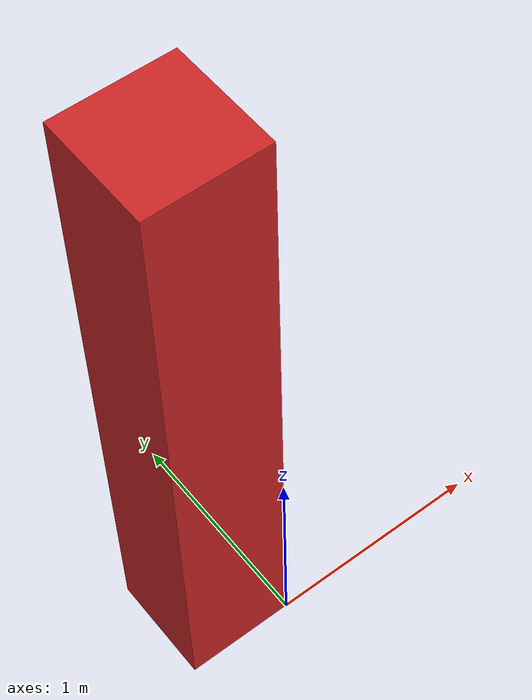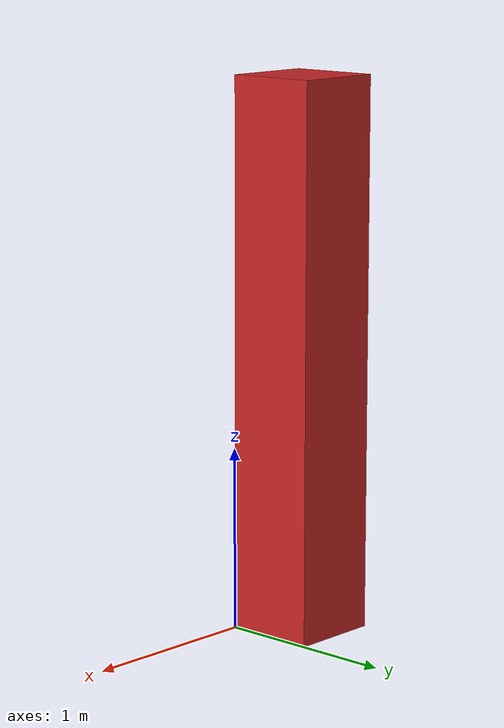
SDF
<?xml version="1.0"?>
<sdf version="1.6">
  <model name="pole_textured">
    <static>true</static>

    <link name="link_pole_textured">
      <pose frame=''>-0.25 0.25 1.50 0 -0 0</pose>
      <collision name="body_collision">
        <geometry>
          <box>
            <size>0.50 0.50 3.00</size>
          </box>
        </geometry>
      </collision>

      <visual name="visual_pole_textured">
	<pose frame=''>0 0 0 0 -0 0</pose>
        <geometry>
          <box>
            <size>0.50 0.50 3.00</size>
          </box>
	</geometry>

	    <material>
		<script>
			<uri>model://pole_textured/materials/scripts</uri>
			<uri>model://pole_textured/materials/textures</uri>
			<name>repeated_pole_textured</name>
		</script>
	    </material>

      </visual>

     </link>
  </model>
</sdf>
